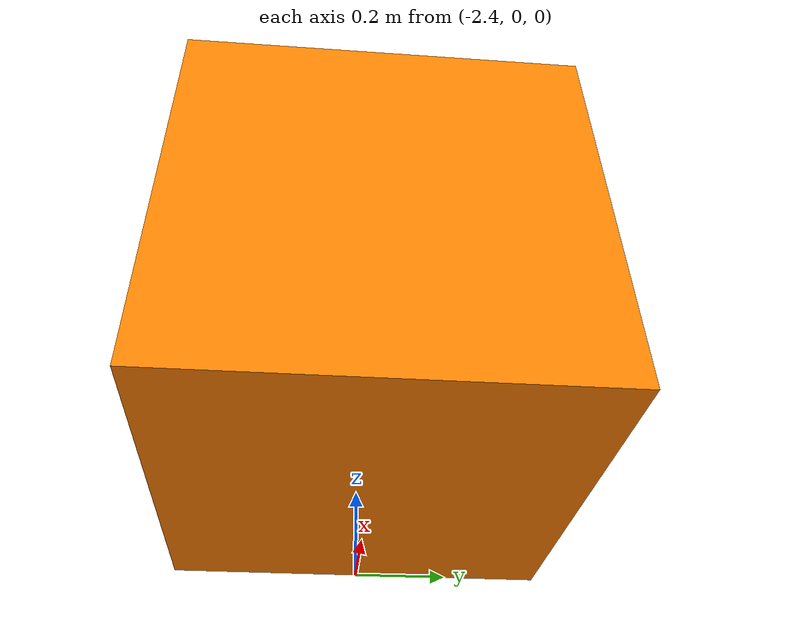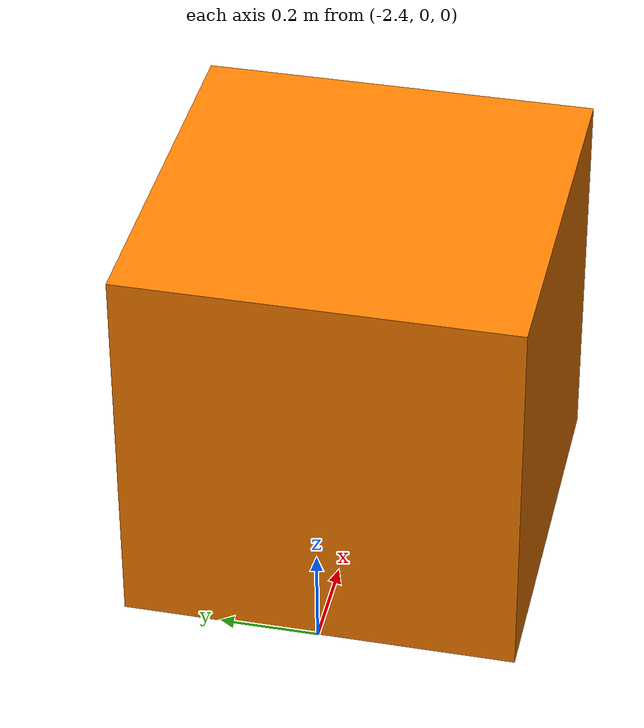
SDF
<?xml version="1.0" ?>
<sdf version="1.10">
    <model name="orangeBox0_8x0_8x0_8">
      <static>true</static>
      <pose>-2 0 0.4 0 0 0</pose>
      <link name="link">
        <collision name="collision">
          <geometry><box><size>0.8 0.8 0.8</size></box></geometry>
        </collision>
        <visual name="visual">
          <geometry><box><size>0.8 0.8 0.8</size></box></geometry>
          <material><ambient>1 0.5 0 1</ambient><diffuse>1 0.5 0 1</diffuse></material>
        </visual>
      </link>
    </model>
</sdf>
